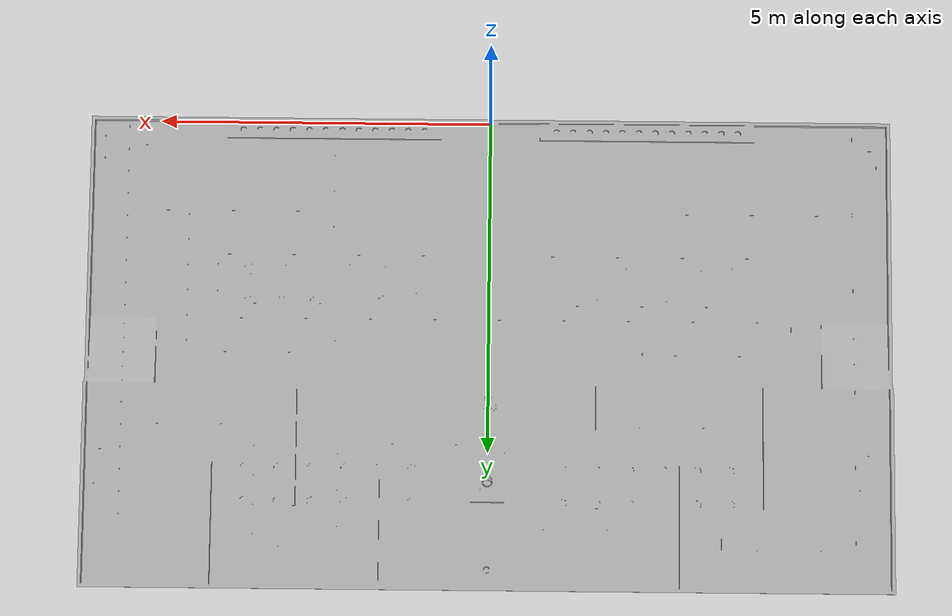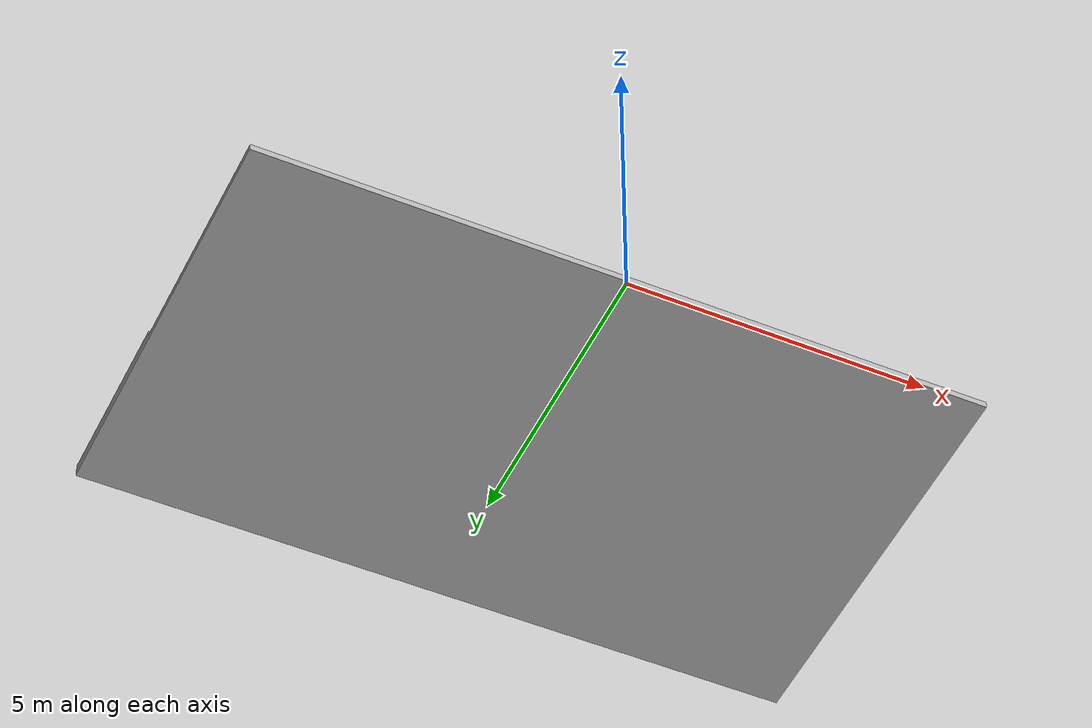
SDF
<?xml version="1.0" ?>
<sdf version="1.6">
  <model name="my_field" canonical_link='field'>
    <!--動かないエンティティであることを設定-->
    <static>true</static>
    <link name="field">
      <collision name="collision">
        <geometry>
          <mesh>
            <scale>1 1 1</scale>
            <uri>model://field/meshes/tourobo_Field.stl</uri>
          </mesh>
        </geometry>
        <surface>
          <friction>
            <ode>
              <mu>1.2</mu>
              <mu2>1.2</mu2>
            </ode>
          </friction>
        </surface>
      </collision>
      <visual name="visual">
        <geometry>
          <mesh>
            <scale>1 1 1</scale>
            <uri>model://field/meshes/tourobo_Field.dae</uri>
          </mesh>
        </geometry>
      </visual>
    </link>
  </model>
</sdf>
